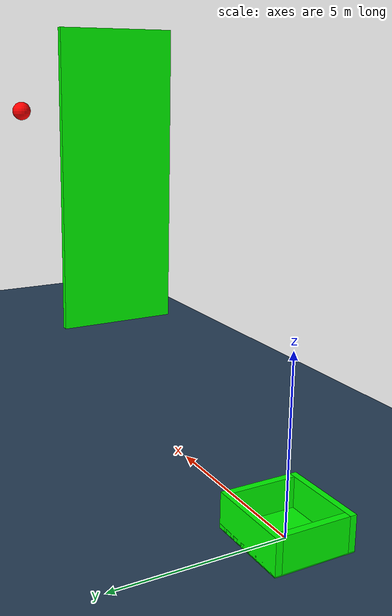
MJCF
<mujoco model="bouncing ball">
  <size nconmax="300" njmax="500"/>
  <option timestep="0.01" />
  <option gravity="0 0 -98.1"/>
  <statistic center="10 0 5" extent="20"/>
  <visual>
    <headlight diffuse="0.6 0.6 0.6" ambient="0.1 0.1 0.1" specular="0 0 0"/>
    <rgba haze="0.15 0.25 0.35 1"/>
    <global azimuth="90" elevation="0"/>
  </visual>

  <asset>
    <texture type="skybox" builtin="gradient" rgb1="0.3 0.5 0.7" rgb2="0 0 0" width="512" height="3072"/>
    <texture type="2d" name="groundplane" builtin="checker" mark="edge" rgb1="0.2 0.3 0.4" rgb2="0.1 0.2 0.3"
      markrgb="0.8 0.8 0.8" width="300" height="300"/>
    <material name="groundplane" texture="groundplane" texuniform="true" texrepeat="1 1" reflectance="0.2"/>
    <material name="blue_" rgba="0 0 1 1" />
    <material name="green" rgba="0 1 0 1" />
    <material name="red__" rgba="1 0 0 1" />
    <material name="white" rgba="1 1 1 1" />
  </asset>

  <worldbody>
    <light pos="0 0 10" dir="0 0 -1" directional="true"/>
    <geom name="floor" size="0 0 0.05" type="plane" material="groundplane" solref="0.01 0.5" />

    <body name="basket_floating" pos="0 0 0" mocap="true">
      <geom name="bottom" type="box" size="1.2 1.2 0.1" pos="0 0 0" material="green"/>
      <geom name="wall1" type="box" size="0.1 1 0.5" pos="1.1 0 0.5" material="green"/>
      <geom name="wall2" type="box" size="0.1 1 0.5" pos="-1.1 0 0.5" material="green"/>
      <geom name="wall3" type="box" size="1.2 0.1 0.5" pos="0 1.1 0.5" material="green"/>
      <geom name="wall4" type="box" size="1.2 0.1 0.5" pos="0 -1.1 0.5" material="green"/>
    </body>

    <body name="blocking_wall" pos="10 0 8">
      <geom name="wall" type="box" size="0.1 2 5" pos="0 0 0" material="green"/>
    </body>

    <body name="ball" pos="20 0 10">
      <joint type="free"/>
      <geom name="ball" type="sphere" size="0.4" density="0.5" material="red__" solref="0.01 0.475" />
    </body>
  </worldbody>
</mujoco>
